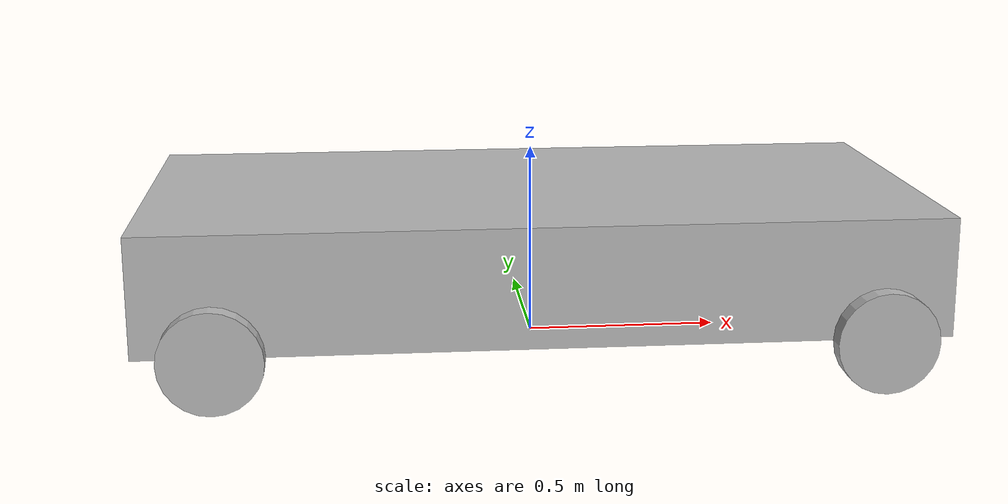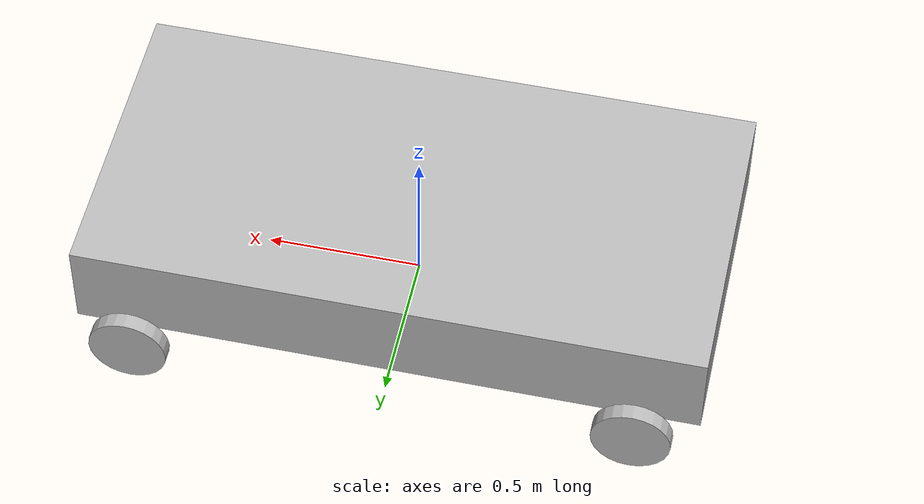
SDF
<?xml version='1.0'?>
<sdf version="1.5">
  <model name="robot_tutorial">
    <static>true</static>
      <!-- The body of the robot and the caster-->
      <link name='chassis'>
        <!-- Inserting the body here -->
        <pose>0 0 .25 0 0 0</pose>   <!-- The geometry origin -->
        <inertial>
          <mass>20.0</mass>
          <pose>-0.1 0 -0.1 0 0 0</pose>
          <inertia>
            <ixx>0.5</ixx>
            <iyy>1.0</iyy>
            <izz>0.1</izz>
          </inertia>
        </inertial>
        <collision name='collision'>
          <geometry>
            <box>
              <size>2 1 0.3</size>
            </box>
          </geometry>
        </collision>
        <visual name='visual'>
          <geometry>
            <box>
              <size>2 1 0.3</size>
            </box>
          </geometry>
        </visual>
      </link>

      <!-- Inserting the front left wheel -->
      <link name='front_left_wheel'>
        <pose>0.8 0.6 0.125 0 1.5707 1.5707</pose>
        <collision name='collision'>
          <geometry>
            <cylinder>
              <radius>0.125</radius>
              <length>0.05</length>
            </cylinder>
          </geometry>
        </collision>
        <visual name='visual'>
          <geometry>
            <cylinder>
              <radius>0.125</radius>
              <length>0.05</length>
            </cylinder>
          </geometry>
        </visual>
      </link>

      <!-- Inserting the front right wheel -->
      <link name='front_right_wheel'>
        <pose>0.8 -0.6 0.125 0 1.5707 1.5707</pose>
        <collision name='collision'>
          <geometry>
            <cylinder>
              <radius>0.125</radius>
              <length>0.05</length>
            </cylinder>
          </geometry>
        </collision>
        <visual name='visual'>
          <geometry>
            <cylinder>
              <radius>0.125</radius>
              <length>0.05</length>
            </cylinder>
          </geometry>
        </visual>
      </link>

      <!-- Inserting the rear left wheel -->
      <link name='rear_left_wheel'>
        <pose>-0.8 0.6 0.125 0 1.5707 1.5707</pose>
        <collision name='collision'>
          <geometry>
            <cylinder>
              <radius>0.125</radius>
              <length>0.05</length>
            </cylinder>
          </geometry>
        </collision>
        <visual name='visual'>
          <geometry>
            <cylinder>
              <radius>0.125</radius>
              <length>0.05</length>
            </cylinder>
          </geometry>
        </visual>
      </link>

      <!-- Inserting the rear right wheel -->
      <link name='rear_right_wheel'>
        <pose>-0.8 -0.6 0.125 0 1.5707 1.5707</pose>
        <collision name='collision'>
          <geometry>
            <cylinder>
              <radius>0.125</radius>
              <length>0.05</length>
            </cylinder>
          </geometry>
        </collision>
        <visual name='visual'>
          <geometry>
            <cylinder>
              <radius>0.125</radius>
              <length>0.05</length>
            </cylinder>
          </geometry>
        </visual>
      </link>

      <!-- Adding a Laser Sensor (hokuyo) -->
      <!-- Or a Camera -->
      <include>
        <uri>model://camera</uri>
        <pose>0.2 0 0.2 0 0 0</pose>
      </include>
      <joint name='hokuyo_joint' type='fixed'>
        <child>hokuyo::link</child>
        <parent>chassis</parent>
      </joint>

      <!-- Connecting each wheel to the chassis -->
      <joint type='revolute' name='f_left_wheel_hinge'>
        <pose>0 0 -0.03 0 0 0</pose>
        <child>front_left_wheel</child>
        <parent>chassis</parent>
        <axis>
          <xyz>0 1 0</xyz>
        </axis>
      </joint>

      <joint type='revolute' name='f_right_wheel_hinge'>
        <pose>0 0 0.03 0 0 0</pose>
        <child>front_right_wheel</child>
        <parent>chassis</parent>
        <axis>
          <xyz>0 1 0</xyz>
        </axis>
      </joint>

      <joint type='revolute' name='r_left_wheel_hinge'>
        <pose>0 0 -0.03 0 0 0</pose>
        <child>rear_left_wheel</child>
        <parent>chassis</parent>
        <axis>
          <xyz>0 1 0</xyz>
        </axis>
      </joint>

      <joint type='revolute' name='r_right_wheel_hinge'>
        <pose>0 0 0.03 0 0 0</pose>
        <child>rear_right_wheel</child>
        <parent>chassis</parent>
        <axis>
          <xyz>0 1 0</xyz>
        </axis>
      </joint>

  </model>
</sdf>

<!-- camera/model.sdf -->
<sdf version="1.5">
  <model name="camera">
    <pose>0 0 0.05 0 0 0</pose>
    <link name="link">
      <inertial>
        <mass>0.1</mass>
        <inertia>
          <ixx>0.000166667</ixx>
          <iyy>0.000166667</iyy>
          <izz>0.000166667</izz>
        </inertia>
      </inertial>
      <collision name="collision">
        <geometry>
          <box>
            <size>0.1 0.1 0.1</size>
          </box>
        </geometry>
      </collision>
      <visual name="visual">
        <geometry>
          <box>
            <size>0.1 0.1 0.1</size>
          </box>
        </geometry>
      </visual>
      <sensor name="camera" type="camera">
        <camera>
          <horizontal_fov>1.047</horizontal_fov>
          <image>
            <width>320</width>
            <height>240</height>
          </image>
          <clip>
            <near>0.1</near>
            <far>100</far>
          </clip>
        </camera>
        <always_on>1</always_on>
        <update_rate>30</update_rate>
        <visualize>true</visualize>
      </sensor>
    </link>
  </model>
</sdf>
